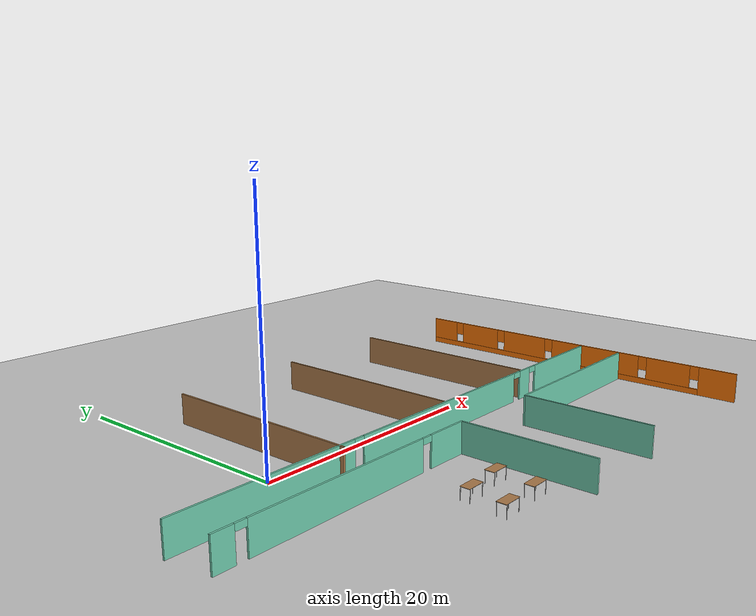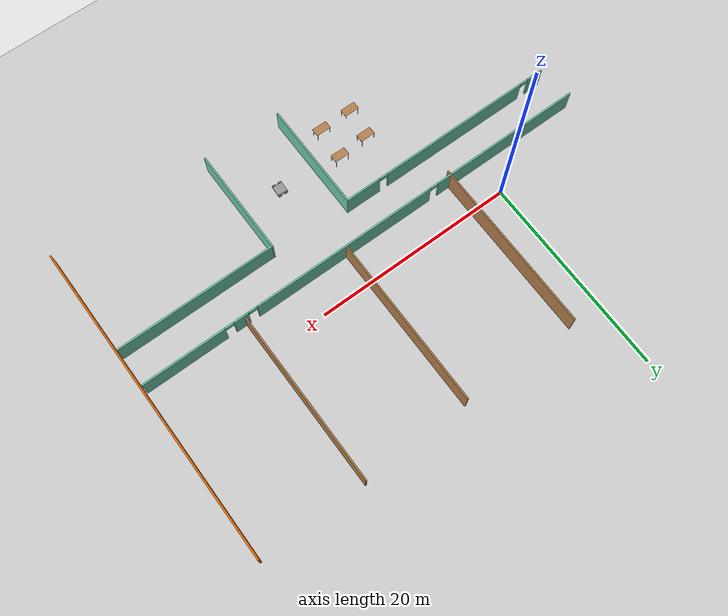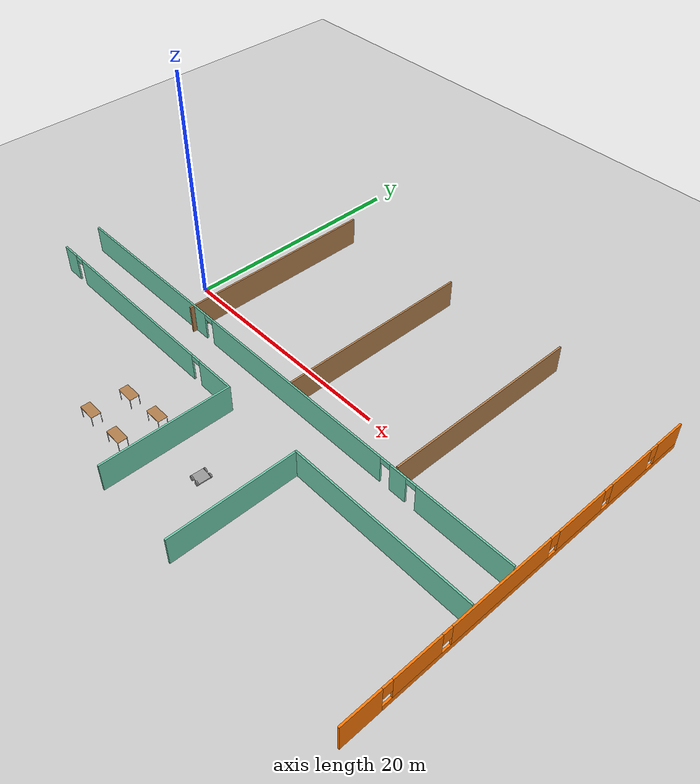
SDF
<sdf version="1.6">
 <world name="default">
  <model name="ground_plane">
   <static>1</static>
   <link name="link">
    <collision name="collision">
     <geometry><plane><normal>0 0 1</normal><size>100 100</size></plane></geometry>
     <surface>
      <contact><collide_bitmask>65535</collide_bitmask></contact>
      <friction><ode><mu>100</mu><mu2>50</mu2></ode></friction>
     </surface>
    </collision>
    <visual name="visual">
     <cast_shadows>0</cast_shadows>
     <geometry><plane><normal>0 0 1</normal><size>100 100</size></plane></geometry>
     <material>
      <script><uri>file://media/materials/scripts/gazebo.material</uri><name>Gazebo/Grey</name></script>
     </material>
    </visual>
   </link>
  </model>
  <model name="world">
   <pose>0.998 -1.93669 0 0 -0 0</pose>
   <link name="Wall_14">
    <pose>11.8284 -1.40779 0 0 -0 0</pose>
    <visual name="Wall_14_Visual_0">
     <pose>-15.6414 0 1.25 0 -0 0</pose>
     <geometry><box><size>15.4671 0.15 2.5</size></box></geometry>
     <material>
      <script><uri>file://media/materials/scripts/gazebo.material</uri><name>Gazebo/Grey</name></script>
      <ambient>0.435294 0.796078 0.67451 1</ambient>
     </material>
     <meta><layer>0</layer></meta>
    </visual>
    <collision name="Wall_14_Collision_0">
     <geometry><box><size>15.4671 0.15 2.5</size></box></geometry>
     <pose>-15.6414 0 1.25 0 -0 0</pose>
    </collision>
    <visual name="Wall_14_Visual_1">
     <pose>2.37266 0 1.25 0 -0 0</pose>
     <geometry><box><size>18.761 0.15 2.5</size></box></geometry>
     <material>
      <script><uri>file://media/materials/scripts/gazebo.material</uri><name>Gazebo/Grey</name></script>
      <ambient>0.435294 0.796078 0.67451 1</ambient>
     </material>
     <meta><layer>0</layer></meta>
    </visual>
    <collision name="Wall_14_Collision_1">
     <geometry><box><size>18.761 0.15 2.5</size></box></geometry>
     <pose>2.37266 0 1.25 0 -0 0</pose>
    </collision>
    <visual name="Wall_14_Visual_2">
     <pose>13.406 0 1.25 0 -0 0</pose>
     <geometry><box><size>1.50558 0.15 2.5</size></box></geometry>
     <material>
      <script><uri>file://media/materials/scripts/gazebo.material</uri><name>Gazebo/Grey</name></script>
      <ambient>0.435294 0.796078 0.67451 1</ambient>
     </material>
     <meta><layer>0</layer></meta>
    </visual>
    <collision name="Wall_14_Collision_2">
     <geometry><box><size>1.50558 0.15 2.5</size></box></geometry>
     <pose>13.406 0 1.25 0 -0 0</pose>
    </collision>
    <visual name="Wall_14_Visual_3">
     <pose>19.2169 0 1.25 0 -0 0</pose>
     <geometry><box><size>8.31625 0.15 2.5</size></box></geometry>
     <material>
      <script><uri>file://media/materials/scripts/gazebo.material</uri><name>Gazebo/Grey</name></script>
      <ambient>0.435294 0.796078 0.67451 1</ambient>
     </material>
     <meta><layer>0</layer></meta>
    </visual>
    <collision name="Wall_14_Collision_3">
     <geometry><box><size>8.31625 0.15 2.5</size></box></geometry>
     <pose>19.2169 0 1.25 0 -0 0</pose>
    </collision>
    <visual name="Wall_14_Visual_4">
     <pose>-7.45785 0 2.25 0 -0 0</pose>
     <geometry><box><size>0.9 0.15 0.5</size></box></geometry>
     <material>
      <script><uri>file://media/materials/scripts/gazebo.material</uri><name>Gazebo/Grey</name></script>
      <ambient>0.435294 0.796078 0.67451 1</ambient>
     </material>
     <meta><layer>0</layer></meta>
    </visual>
    <collision name="Wall_14_Collision_4">
     <geometry><box><size>0.9 0.15 0.5</size></box></geometry>
     <pose>-7.45785 0 2.25 0 -0 0</pose>
    </collision>
    <visual name="Wall_14_Visual_5">
     <pose>12.2032 0 2.25 0 -0 0</pose>
     <geometry><box><size>0.9 0.15 0.5</size></box></geometry>
     <material>
      <script><uri>file://media/materials/scripts/gazebo.material</uri><name>Gazebo/Grey</name></script>
      <ambient>0.435294 0.796078 0.67451 1</ambient>
     </material>
     <meta><layer>0</layer></meta>
    </visual>
    <collision name="Wall_14_Collision_5">
     <geometry><box><size>0.9 0.15 0.5</size></box></geometry>
     <pose>12.2032 0 2.25 0 -0 0</pose>
    </collision>
    <visual name="Wall_14_Visual_6">
     <pose>14.6087 0 2.25 0 -0 0</pose>
     <geometry><box><size>0.9 0.15 0.5</size></box></geometry>
     <material>
      <script><uri>file://media/materials/scripts/gazebo.material</uri><name>Gazebo/Grey</name></script>
      <ambient>0.435294 0.796078 0.67451 1</ambient>
     </material>
     <meta><layer>0</layer></meta>
    </visual>
    <collision name="Wall_14_Collision_6">
     <geometry><box><size>0.9 0.15 0.5</size></box></geometry>
     <pose>14.6087 0 2.25 0 -0 0</pose>
    </collision>
   </link>
   <link name="Wall_16">
    <collision name="Wall_16_Collision">
     <geometry><box><size>17.5 0.15 2.5</size></box></geometry>
     <pose>0 0 1.25 0 -0 0</pose>
    </collision>
    <visual name="Wall_16_Visual">
     <pose>0 0 1.25 0 -0 0</pose>
     <geometry><box><size>17.5 0.15 2.5</size></box></geometry>
     <material>
      <script><uri>file://media/materials/scripts/gazebo.material</uri><name>Gazebo/Wood</name></script>
      <ambient>1 1 1 1</ambient>
     </material>
     <meta><layer>0</layer></meta>
    </visual>
    <pose>2.48559 6.92417 0 0 0 -1.5708</pose>
   </link>
   <link name="Wall_18">
    <collision name="Wall_18_Collision">
     <geometry><box><size>17 0.15 2.5</size></box></geometry>
     <pose>0 0 1.25 0 -0 0</pose>
    </collision>
    <visual name="Wall_18_Visual">
     <pose>0 0 1.25 0 -0 0</pose>
     <geometry><box><size>17 0.15 2.5</size></box></geometry>
     <material>
      <script><uri>file://media/materials/scripts/gazebo.material</uri><name>Gazebo/Wood</name></script>
      <ambient>1 1 1 1</ambient>
     </material>
     <meta><layer>0</layer></meta>
    </visual>
    <pose>14.1166 7.17417 0 0 0 -1.5708</pose>
   </link>
   <link name="Wall_20">
    <collision name="Wall_20_Collision">
     <geometry><box><size>17.25 0.15 2.5</size></box></geometry>
     <pose>0 0 1.25 0 -0 0</pose>
    </collision>
    <visual name="Wall_20_Visual">
     <pose>0 0 1.25 0 -0 0</pose>
     <geometry><box><size>17.25 0.15 2.5</size></box></geometry>
     <material>
      <script><uri>file://media/materials/scripts/gazebo.material</uri><name>Gazebo/Wood</name></script>
      <ambient>1 1 1 1</ambient>
     </material>
     <meta><layer>0</layer></meta>
    </visual>
    <pose>24.9101 7.42136 0 0 0 -1.5708</pose>
   </link>
   <link name="Wall_26">
    <pose>0.261708 -4.87136 0 0 -0 0</pose>
    <visual name="Wall_26_Visual_0">
     <pose>-10.4274 0 1.25 0 -0 0</pose>
     <geometry><box><size>1.64525 0.15 2.5</size></box></geometry>
     <material>
      <script><uri>file://media/materials/scripts/gazebo.material</uri><name>Gazebo/Grey</name></script>
      <ambient>0.435294 0.796078 0.67451 1</ambient>
     </material>
     <meta><layer>0</layer></meta>
    </visual>
    <collision name="Wall_26_Collision_0">
     <geometry><box><size>1.64525 0.15 2.5</size></box></geometry>
     <pose>-10.4274 0 1.25 0 -0 0</pose>
    </collision>
    <visual name="Wall_26_Visual_1">
     <pose>-0.993281 0 1.25 0 -0 0</pose>
     <geometry><box><size>15.4229 0.15 2.5</size></box></geometry>
     <material>
      <script><uri>file://media/materials/scripts/gazebo.material</uri><name>Gazebo/Grey</name></script>
      <ambient>0.435294 0.796078 0.67451 1</ambient>
     </material>
     <meta><layer>0</layer></meta>
    </visual>
    <collision name="Wall_26_Collision_1">
     <geometry><box><size>15.4229 0.15 2.5</size></box></geometry>
     <pose>-0.993281 0 1.25 0 -0 0</pose>
    </collision>
    <visual name="Wall_26_Visual_2">
     <pose>9.4341 0 1.25 0 -0 0</pose>
     <geometry><box><size>3.63181 0.15 2.5</size></box></geometry>
     <material>
      <script><uri>file://media/materials/scripts/gazebo.material</uri><name>Gazebo/Grey</name></script>
      <ambient>0.435294 0.796078 0.67451 1</ambient>
     </material>
     <meta><layer>0</layer></meta>
    </visual>
    <collision name="Wall_26_Collision_2">
     <geometry><box><size>3.63181 0.15 2.5</size></box></geometry>
     <pose>9.4341 0 1.25 0 -0 0</pose>
    </collision>
    <visual name="Wall_26_Visual_3">
     <pose>-9.15475 0 2.25 0 -0 0</pose>
     <geometry><box><size>0.9 0.15 0.5</size></box></geometry>
     <material>
      <script><uri>file://media/materials/scripts/gazebo.material</uri><name>Gazebo/Grey</name></script>
      <ambient>0.435294 0.796078 0.67451 1</ambient>
     </material>
     <meta><layer>0</layer></meta>
    </visual>
    <collision name="Wall_26_Collision_3">
     <geometry><box><size>0.9 0.15 0.5</size></box></geometry>
     <pose>-9.15475 0 2.25 0 -0 0</pose>
    </collision>
    <visual name="Wall_26_Visual_4">
     <pose>7.16819 0 2.25 0 -0 0</pose>
     <geometry><box><size>0.9 0.15 0.5</size></box></geometry>
     <material>
      <script><uri>file://media/materials/scripts/gazebo.material</uri><name>Gazebo/Grey</name></script>
      <ambient>0.435294 0.796078 0.67451 1</ambient>
     </material>
     <meta><layer>0</layer></meta>
    </visual>
    <collision name="Wall_26_Collision_4">
     <geometry><box><size>0.9 0.15 0.5</size></box></geometry>
     <pose>7.16819 0 2.25 0 -0 0</pose>
    </collision>
   </link>
   <link name="Wall_27">
    <collision name="Wall_27_Collision">
     <geometry><box><size>11 0.15 2.5</size></box></geometry>
     <pose>0 0 1.25 0 -0 0</pose>
    </collision>
    <visual name="Wall_27_Visual">
     <pose>0 0 1.25 0 -0 0</pose>
     <geometry><box><size>11 0.15 2.5</size></box></geometry>
     <material>
      <script><uri>file://media/materials/scripts/gazebo.material</uri><name>Gazebo/Grey</name></script>
      <ambient>0.435294 0.796078 0.67451 1</ambient>
     </material>
     <meta><layer>0</layer></meta>
    </visual>
    <pose>11.4367 -10.2964 0 0 0 -1.5708</pose>
   </link>
   <link name="Wall_29">
    <collision name="Wall_29_Collision">
     <geometry><box><size>16 0.15 2.5</size></box></geometry>
     <pose>0 0 1.25 0 -0 0</pose>
    </collision>
    <visual name="Wall_29_Visual">
     <pose>0 0 1.25 0 -0 0</pose>
     <geometry><box><size>16 0.15 2.5</size></box></geometry>
     <material>
      <script><uri>file://media/materials/scripts/gazebo.material</uri><name>Gazebo/Grey</name></script>
      <ambient>0.435294 0.796078 0.67451 1</ambient>
     </material>
     <meta><layer>0</layer></meta>
    </visual>
    <pose>27.2523 -5.24355 0 0 -0 0</pose>
   </link>
   <link name="Wall_32">
    <collision name="Wall_32_Collision">
     <geometry><box><size>10.75 0.15 2.5</size></box></geometry>
     <pose>0 0 1.25 0 -0 0</pose>
    </collision>
    <visual name="Wall_32_Visual">
     <pose>0 0 1.25 0 -0 0</pose>
     <geometry><box><size>10.75 0.15 2.5</size></box></geometry>
     <material>
      <script><uri>file://media/materials/scripts/gazebo.material</uri><name>Gazebo/Grey</name></script>
      <ambient>0.435294 0.796078 0.67451 1</ambient>
     </material>
     <meta><layer>0</layer></meta>
    </visual>
    <pose>19.3273 -10.5435 0 0 0 -1.5708</pose>
   </link>
   <link name="Wall_7">
    <pose>35.4012 -0.01193 0 0 -0 1.5708</pose>
    <visual name="Wall_7_Visual_0">
     <pose>-14.3843 0 1.25 0 -0 0</pose>
     <geometry><box><size>3.23139 0.15 2.5</size></box></geometry>
     <material>
      <script><uri>file://media/materials/scripts/gazebo.material</uri><name>Gazebo/Grey</name></script>
      <ambient>0.996078 0.47451 0.0196078 1</ambient>
     </material>
     <meta><layer>0</layer></meta>
    </visual>
    <collision name="Wall_7_Collision_0">
     <geometry><box><size>3.23139 0.15 2.5</size></box></geometry>
     <pose>-14.3843 0 1.25 0 -0 0</pose>
    </collision>
    <visual name="Wall_7_Visual_1">
     <pose>1.6157 0 0.25 0 -0 0</pose>
     <geometry><box><size>28.7686 0.15 0.5</size></box></geometry>
     <material>
      <script><uri>file://media/materials/scripts/gazebo.material</uri><name>Gazebo/Grey</name></script>
      <ambient>0.996078 0.47451 0.0196078 1</ambient>
     </material>
     <meta><layer>0</layer></meta>
    </visual>
    <collision name="Wall_7_Collision_1">
     <geometry><box><size>28.7686 0.15 0.5</size></box></geometry>
     <pose>1.6157 0 0.25 0 -0 0</pose>
    </collision>
    <visual name="Wall_7_Visual_2">
     <pose>-9.958 0 1.5 0 -0 0</pose>
     <geometry><box><size>4.02121 0.15 2</size></box></geometry>
     <material>
      <script><uri>file://media/materials/scripts/gazebo.material</uri><name>Gazebo/Grey</name></script>
      <ambient>0.996078 0.47451 0.0196078 1</ambient>
     </material>
     <meta><layer>0</layer></meta>
    </visual>
    <collision name="Wall_7_Collision_2">
     <geometry><box><size>4.02121 0.15 2</size></box></geometry>
     <pose>-9.958 0 1.5 0 -0 0</pose>
    </collision>
    <visual name="Wall_7_Visual_3">
     <pose>-2.67355 0 1.5 0 -0 0</pose>
     <geometry><box><size>8.9477 0.15 2</size></box></geometry>
     <material>
      <script><uri>file://media/materials/scripts/gazebo.material</uri><name>Gazebo/Grey</name></script>
      <ambient>0.996078 0.47451 0.0196078 1</ambient>
     </material>
     <meta><layer>0</layer></meta>
    </visual>
    <collision name="Wall_7_Collision_3">
     <geometry><box><size>8.9477 0.15 2</size></box></geometry>
     <pose>-2.67355 0 1.5 0 -0 0</pose>
    </collision>
    <visual name="Wall_7_Visual_4">
     <pose>4.95128 0 1.5 0 -0 0</pose>
     <geometry><box><size>4.70196 0.15 2</size></box></geometry>
     <material>
      <script><uri>file://media/materials/scripts/gazebo.material</uri><name>Gazebo/Grey</name></script>
      <ambient>0.996078 0.47451 0.0196078 1</ambient>
     </material>
     <meta><layer>0</layer></meta>
    </visual>
    <collision name="Wall_7_Collision_4">
     <geometry><box><size>4.70196 0.15 2</size></box></geometry>
     <pose>4.95128 0 1.5 0 -0 0</pose>
    </collision>
    <visual name="Wall_7_Visual_5">
     <pose>10.251 0 1.5 0 -0 0</pose>
     <geometry><box><size>4.2974 0.15 2</size></box></geometry>
     <material>
      <script><uri>file://media/materials/scripts/gazebo.material</uri><name>Gazebo/Grey</name></script>
      <ambient>0.996078 0.47451 0.0196078 1</ambient>
     </material>
     <meta><layer>0</layer></meta>
    </visual>
    <collision name="Wall_7_Collision_5">
     <geometry><box><size>4.2974 0.15 2</size></box></geometry>
     <pose>10.251 0 1.5 0 -0 0</pose>
    </collision>
    <visual name="Wall_7_Visual_6">
     <pose>14.5998 0 1.5 0 -0 0</pose>
     <geometry><box><size>2.80034 0.15 2</size></box></geometry>
     <material>
      <script><uri>file://media/materials/scripts/gazebo.material</uri><name>Gazebo/Grey</name></script>
      <ambient>0.996078 0.47451 0.0196078 1</ambient>
     </material>
     <meta><layer>0</layer></meta>
    </visual>
    <collision name="Wall_7_Collision_6">
     <geometry><box><size>2.80034 0.15 2</size></box></geometry>
     <pose>14.5998 0 1.5 0 -0 0</pose>
    </collision>
    <visual name="Wall_7_Visual_7">
     <pose>-12.3686 0 1.9 0 -0 0</pose>
     <geometry><box><size>0.8 0.15 1.2</size></box></geometry>
     <material>
      <script><uri>file://media/materials/scripts/gazebo.material</uri><name>Gazebo/Grey</name></script>
      <ambient>0.996078 0.47451 0.0196078 1</ambient>
     </material>
     <meta><layer>0</layer></meta>
    </visual>
    <collision name="Wall_7_Collision_7">
     <geometry><box><size>0.8 0.15 1.2</size></box></geometry>
     <pose>-12.3686 0 1.9 0 -0 0</pose>
    </collision>
    <visual name="Wall_7_Visual_8">
     <pose>-7.5474 0 1.9 0 -0 0</pose>
     <geometry><box><size>0.8 0.15 1.2</size></box></geometry>
     <material>
      <script><uri>file://media/materials/scripts/gazebo.material</uri><name>Gazebo/Grey</name></script>
      <ambient>0.996078 0.47451 0.0196078 1</ambient>
     </material>
     <meta><layer>0</layer></meta>
    </visual>
    <collision name="Wall_7_Collision_8">
     <geometry><box><size>0.8 0.15 1.2</size></box></geometry>
     <pose>-7.5474 0 1.9 0 -0 0</pose>
    </collision>
    <visual name="Wall_7_Visual_9">
     <pose>2.2003 0 1.9 0 -0 0</pose>
     <geometry><box><size>0.8 0.15 1.2</size></box></geometry>
     <material>
      <script><uri>file://media/materials/scripts/gazebo.material</uri><name>Gazebo/Grey</name></script>
      <ambient>0.996078 0.47451 0.0196078 1</ambient>
     </material>
     <meta><layer>0</layer></meta>
    </visual>
    <collision name="Wall_7_Collision_9">
     <geometry><box><size>0.8 0.15 1.2</size></box></geometry>
     <pose>2.2003 0 1.9 0 -0 0</pose>
    </collision>
    <visual name="Wall_7_Visual_10">
     <pose>7.70226 0 1.9 0 -0 0</pose>
     <geometry><box><size>0.8 0.15 1.2</size></box></geometry>
     <material>
      <script><uri>file://media/materials/scripts/gazebo.material</uri><name>Gazebo/Grey</name></script>
      <ambient>0.996078 0.47451 0.0196078 1</ambient>
     </material>
     <meta><layer>0</layer></meta>
    </visual>
    <collision name="Wall_7_Collision_10">
     <geometry><box><size>0.8 0.15 1.2</size></box></geometry>
     <pose>7.70226 0 1.9 0 -0 0</pose>
    </collision>
    <visual name="Wall_7_Visual_11">
     <pose>12.7997 0 1.9 0 -0 0</pose>
     <geometry><box><size>0.8 0.15 1.2</size></box></geometry>
     <material>
      <script><uri>file://media/materials/scripts/gazebo.material</uri><name>Gazebo/Grey</name></script>
      <ambient>0.996078 0.47451 0.0196078 1</ambient>
     </material>
     <meta><layer>0</layer></meta>
    </visual>
    <collision name="Wall_7_Collision_11">
     <geometry><box><size>0.8 0.15 1.2</size></box></geometry>
     <pose>12.7997 0 1.9 0 -0 0</pose>
    </collision>
   </link>
   <static>1</static>
  </model>
  <model name="table">
   <static>1</static>
   <link name="link">
    <collision name="surface">
     <pose>0 0 1 0 -0 0</pose>
     <geometry><box><size>1.5 0.8 0.03</size></box></geometry>
     <surface><friction><ode><mu>0.6</mu><mu2>0.6</mu2></ode></friction></surface>
    </collision>
    <visual name="visual1">
     <pose>0 0 1 0 -0 0</pose>
     <geometry><box><size>1.5 0.8 0.03</size></box></geometry>
     <material>
      <script><uri>file://media/materials/scripts/gazebo.material</uri><name>Gazebo/Wood</name></script>
     </material>
    </visual>
    <collision name="front_left_leg">
     <pose>0.68 0.38 0.5 0 -0 0</pose>
     <geometry><cylinder><radius>0.02</radius><length>1</length></cylinder></geometry>
    </collision>
    <visual name="front_left_leg">
     <pose>0.68 0.38 0.5 0 -0 0</pose>
     <geometry><cylinder><radius>0.02</radius><length>1</length></cylinder></geometry>
     <material>
      <script><uri>file://media/materials/scripts/gazebo.material</uri><name>Gazebo/Grey</name></script>
     </material>
    </visual>
    <collision name="front_right_leg">
     <pose>0.68 -0.38 0.5 0 -0 0</pose>
     <geometry><cylinder><radius>0.02</radius><length>1</length></cylinder></geometry>
    </collision>
    <visual name="front_right_leg">
     <pose>0.68 -0.38 0.5 0 -0 0</pose>
     <geometry><cylinder><radius>0.02</radius><length>1</length></cylinder></geometry>
     <material>
      <script><uri>file://media/materials/scripts/gazebo.material</uri><name>Gazebo/Grey</name></script>
     </material>
    </visual>
    <collision name="back_right_leg">
     <pose>-0.68 -0.38 0.5 0 -0 0</pose>
     <geometry><cylinder><radius>0.02</radius><length>1</length></cylinder></geometry>
    </collision>
    <visual name="back_right_leg">
     <pose>-0.68 -0.38 0.5 0 -0 0</pose>
     <geometry><cylinder><radius>0.02</radius><length>1</length></cylinder></geometry>
     <material>
      <script><uri>file://media/materials/scripts/gazebo.material</uri><name>Gazebo/Grey</name></script>
     </material>
    </visual>
    <collision name="back_left_leg">
     <pose>-0.68 0.38 0.5 0 -0 0</pose>
     <geometry><cylinder><radius>0.02</radius><length>1</length></cylinder></geometry>
    </collision>
    <visual name="back_left_leg">
     <pose>-0.68 0.38 0.5 0 -0 0</pose>
     <geometry><cylinder><radius>0.02</radius><length>1</length></cylinder></geometry>
     <material>
      <script><uri>file://media/materials/scripts/gazebo.material</uri><name>Gazebo/Grey</name></script>
     </material>
    </visual>
   </link>
   <pose>6.72518 -11.8017 0 0 -0 0</pose>
  </model>
  <model name="table_clone">
   <static>1</static>
   <link name="link">
    <collision name="surface">
     <pose>0 0 1 0 -0 0</pose>
     <geometry><box><size>1.5 0.8 0.03</size></box></geometry>
     <surface><friction><ode><mu>0.6</mu><mu2>0.6</mu2></ode></friction></surface>
    </collision>
    <visual name="visual1">
     <pose>0 0 1 0 -0 0</pose>
     <geometry><box><size>1.5 0.8 0.03</size></box></geometry>
     <material>
      <script><uri>file://media/materials/scripts/gazebo.material</uri><name>Gazebo/Wood</name></script>
     </material>
    </visual>
    <collision name="front_left_leg">
     <pose>0.68 0.38 0.5 0 -0 0</pose>
     <geometry><cylinder><radius>0.02</radius><length>1</length></cylinder></geometry>
    </collision>
    <visual name="front_left_leg">
     <pose>0.68 0.38 0.5 0 -0 0</pose>
     <geometry><cylinder><radius>0.02</radius><length>1</length></cylinder></geometry>
     <material>
      <script><uri>file://media/materials/scripts/gazebo.material</uri><name>Gazebo/Grey</name></script>
     </material>
    </visual>
    <collision name="front_right_leg">
     <pose>0.68 -0.38 0.5 0 -0 0</pose>
     <geometry><cylinder><radius>0.02</radius><length>1</length></cylinder></geometry>
    </collision>
    <visual name="front_right_leg">
     <pose>0.68 -0.38 0.5 0 -0 0</pose>
     <geometry><cylinder><radius>0.02</radius><length>1</length></cylinder></geometry>
     <material>
      <script><uri>file://media/materials/scripts/gazebo.material</uri><name>Gazebo/Grey</name></script>
     </material>
    </visual>
    <collision name="back_right_leg">
     <pose>-0.68 -0.38 0.5 0 -0 0</pose>
     <geometry><cylinder><radius>0.02</radius><length>1</length></cylinder></geometry>
    </collision>
    <visual name="back_right_leg">
     <pose>-0.68 -0.38 0.5 0 -0 0</pose>
     <geometry><cylinder><radius>0.02</radius><length>1</length></cylinder></geometry>
     <material>
      <script><uri>file://media/materials/scripts/gazebo.material</uri><name>Gazebo/Grey</name></script>
     </material>
    </visual>
    <collision name="back_left_leg">
     <pose>-0.68 0.38 0.5 0 -0 0</pose>
     <geometry><cylinder><radius>0.02</radius><length>1</length></cylinder></geometry>
    </collision>
    <visual name="back_left_leg">
     <pose>-0.68 0.38 0.5 0 -0 0</pose>
     <geometry><cylinder><radius>0.02</radius><length>1</length></cylinder></geometry>
     <material>
      <script><uri>file://media/materials/scripts/gazebo.material</uri><name>Gazebo/Grey</name></script>
     </material>
    </visual>
   </link>
   <pose>9.89112 -11.507 0 0 -0 0</pose>
  </model>
  <model name="table_clone_0">
   <static>1</static>
   <link name="link">
    <collision name="surface">
     <pose>0 0 1 0 -0 0</pose>
     <geometry><box><size>1.5 0.8 0.03</size></box></geometry>
     <surface><friction><ode><mu>0.6</mu><mu2>0.6</mu2></ode></friction></surface>
    </collision>
    <visual name="visual1">
     <pose>0 0 1 0 -0 0</pose>
     <geometry><box><size>1.5 0.8 0.03</size></box></geometry>
     <material>
      <script><uri>file://media/materials/scripts/gazebo.material</uri><name>Gazebo/Wood</name></script>
     </material>
    </visual>
    <collision name="front_left_leg">
     <pose>0.68 0.38 0.5 0 -0 0</pose>
     <geometry><cylinder><radius>0.02</radius><length>1</length></cylinder></geometry>
    </collision>
    <visual name="front_left_leg">
     <pose>0.68 0.38 0.5 0 -0 0</pose>
     <geometry><cylinder><radius>0.02</radius><length>1</length></cylinder></geometry>
     <material>
      <script><uri>file://media/materials/scripts/gazebo.material</uri><name>Gazebo/Grey</name></script>
     </material>
    </visual>
    <collision name="front_right_leg">
     <pose>0.68 -0.38 0.5 0 -0 0</pose>
     <geometry><cylinder><radius>0.02</radius><length>1</length></cylinder></geometry>
    </collision>
    <visual name="front_right_leg">
     <pose>0.68 -0.38 0.5 0 -0 0</pose>
     <geometry><cylinder><radius>0.02</radius><length>1</length></cylinder></geometry>
     <material>
      <script><uri>file://media/materials/scripts/gazebo.material</uri><name>Gazebo/Grey</name></script>
     </material>
    </visual>
    <collision name="back_right_leg">
     <pose>-0.68 -0.38 0.5 0 -0 0</pose>
     <geometry><cylinder><radius>0.02</radius><length>1</length></cylinder></geometry>
    </collision>
    <visual name="back_right_leg">
     <pose>-0.68 -0.38 0.5 0 -0 0</pose>
     <geometry><cylinder><radius>0.02</radius><length>1</length></cylinder></geometry>
     <material>
      <script><uri>file://media/materials/scripts/gazebo.material</uri><name>Gazebo/Grey</name></script>
     </material>
    </visual>
    <collision name="back_left_leg">
     <pose>-0.68 0.38 0.5 0 -0 0</pose>
     <geometry><cylinder><radius>0.02</radius><length>1</length></cylinder></geometry>
    </collision>
    <visual name="back_left_leg">
     <pose>-0.68 0.38 0.5 0 -0 0</pose>
     <geometry><cylinder><radius>0.02</radius><length>1</length></cylinder></geometry>
     <material>
      <script><uri>file://media/materials/scripts/gazebo.material</uri><name>Gazebo/Grey</name></script>
     </material>
    </visual>
   </link>
   <pose>9.65125 -14.7254 0 0 -0 0</pose>
  </model>
  <model name="table_clone_0_clone">
   <static>1</static>
   <link name="link">
    <collision name="surface">
     <pose>0 0 1 0 -0 0</pose>
     <geometry><box><size>1.5 0.8 0.03</size></box></geometry>
     <surface><friction><ode><mu>0.6</mu><mu2>0.6</mu2></ode></friction></surface>
    </collision>
    <visual name="visual1">
     <pose>0 0 1 0 -0 0</pose>
     <geometry><box><size>1.5 0.8 0.03</size></box></geometry>
     <material>
      <script><uri>file://media/materials/scripts/gazebo.material</uri><name>Gazebo/Wood</name></script>
     </material>
    </visual>
    <collision name="front_left_leg">
     <pose>0.68 0.38 0.5 0 -0 0</pose>
     <geometry><cylinder><radius>0.02</radius><length>1</length></cylinder></geometry>
    </collision>
    <visual name="front_left_leg">
     <pose>0.68 0.38 0.5 0 -0 0</pose>
     <geometry><cylinder><radius>0.02</radius><length>1</length></cylinder></geometry>
     <material>
      <script><uri>file://media/materials/scripts/gazebo.material</uri><name>Gazebo/Grey</name></script>
     </material>
    </visual>
    <collision name="front_right_leg">
     <pose>0.68 -0.38 0.5 0 -0 0</pose>
     <geometry><cylinder><radius>0.02</radius><length>1</length></cylinder></geometry>
    </collision>
    <visual name="front_right_leg">
     <pose>0.68 -0.38 0.5 0 -0 0</pose>
     <geometry><cylinder><radius>0.02</radius><length>1</length></cylinder></geometry>
     <material>
      <script><uri>file://media/materials/scripts/gazebo.material</uri><name>Gazebo/Grey</name></script>
     </material>
    </visual>
    <collision name="back_right_leg">
     <pose>-0.68 -0.38 0.5 0 -0 0</pose>
     <geometry><cylinder><radius>0.02</radius><length>1</length></cylinder></geometry>
    </collision>
    <visual name="back_right_leg">
     <pose>-0.68 -0.38 0.5 0 -0 0</pose>
     <geometry><cylinder><radius>0.02</radius><length>1</length></cylinder></geometry>
     <material>
      <script><uri>file://media/materials/scripts/gazebo.material</uri><name>Gazebo/Grey</name></script>
     </material>
    </visual>
    <collision name="back_left_leg">
     <pose>-0.68 0.38 0.5 0 -0 0</pose>
     <geometry><cylinder><radius>0.02</radius><length>1</length></cylinder></geometry>
    </collision>
    <visual name="back_left_leg">
     <pose>-0.68 0.38 0.5 0 -0 0</pose>
     <geometry><cylinder><radius>0.02</radius><length>1</length></cylinder></geometry>
     <material>
      <script><uri>file://media/materials/scripts/gazebo.material</uri><name>Gazebo/Grey</name></script>
     </material>
    </visual>
   </link>
   <pose>6.33848 -14.8151 0 0 -0 0</pose>
  </model>
  <model name="bot1">
   <link name="link_0">
    <inertial>
     <mass>1</mass>
     <inertia>
      <ixx>0.166667</ixx>
      <ixy>0</ixy>
      <ixz>0</ixz>
      <iyy>0.166667</iyy>
      <iyz>0</iyz>
      <izz>0.166667</izz>
     </inertia>
    </inertial>
    <visual name="visual">
     <geometry><box><size>1 1 0.1</size></box></geometry>
     <material>
      <lighting>1</lighting>
      <script><uri>file://media/materials/scripts/gazebo.material</uri><name>Gazebo/Grey</name></script>
      <shader type="pixel"><normal_map>__default__</normal_map></shader>
      <ambient>0.3 0.3 0.3 1</ambient>
      <diffuse>0.7 0.7 0.7 1</diffuse>
      <specular>0.01 0.01 0.01 1</specular>
      <emissive>0 0 0 1</emissive>
     </material>
    </visual>
    <collision name="collision">
     <geometry><box><size>1 1 0.1</size></box></geometry>
     <surface>
      <friction>
       <ode><mu>1</mu><mu2>1</mu2><fdir1>0 0 0</fdir1><slip1>0</slip1><slip2>0</slip2></ode>
       <torsional>
        <coefficient>1</coefficient>
        <patch_radius>0</patch_radius>
        <surface_radius>0</surface_radius>
        <use_patch_radius>1</use_patch_radius>
        <ode><slip>0</slip></ode>
       </torsional>
      </friction>
      <bounce><restitution_coefficient>0</restitution_coefficient><threshold>1e+06</threshold></bounce>
      <contact>
       <collide_without_contact>0</collide_without_contact>
       <collide_without_contact_bitmask>1</collide_without_contact_bitmask>
       <collide_bitmask>1</collide_bitmask>
       <ode>
        <soft_cfm>0</soft_cfm>
        <soft_erp>0.2</soft_erp>
        <kp>1e+13</kp>
        <kd>1</kd>
        <max_vel>0.01</max_vel>
        <min_depth>0</min_depth>
       </ode>
       <bullet>
        <split_impulse>1</split_impulse>
        <split_impulse_penetration_threshold>-0.01</split_impulse_penetration_threshold>
        <soft_cfm>0</soft_cfm>
        <soft_erp>0.2</soft_erp>
        <kp>1e+13</kp>
        <kd>1</kd>
       </bullet>
      </contact>
     </surface>
    </collision>
   </link>
   <link name="link_1">
    <pose>-0.3 -0.550019 0 1.5707 -0 0</pose>
    <inertial>
     <mass>1</mass>
     <inertia><ixx>0.145833</ixx><ixy>0</ixy><ixz>0</ixz><iyy>0.145833</iyy><iyz>0</iyz><izz>0.125</izz></inertia>
    </inertial>
    <visual name="visual">
     <geometry><cylinder><radius>0.2</radius><length>0.1</length></cylinder></geometry>
     <material>
      <lighting>1</lighting>
      <script><uri>file://media/materials/scripts/gazebo.material</uri><name>Gazebo/Grey</name></script>
      <shader type="pixel"><normal_map>__default__</normal_map></shader>
      <ambient>0.3 0.3 0.3 1</ambient>
      <diffuse>0.7 0.7 0.7 1</diffuse>
      <specular>0.01 0.01 0.01 1</specular>
      <emissive>0 0 0 1</emissive>
     </material>
    </visual>
    <collision name="collision">
     <geometry><cylinder><radius>0.2</radius><length>0.1</length></cylinder></geometry>
     <surface>
      <friction>
       <ode><mu>1</mu><mu2>1</mu2><fdir1>0 0 0</fdir1><slip1>0</slip1><slip2>0</slip2></ode>
       <torsional>
        <coefficient>1</coefficient>
        <patch_radius>0</patch_radius>
        <surface_radius>0</surface_radius>
        <use_patch_radius>1</use_patch_radius>
        <ode><slip>0</slip></ode>
       </torsional>
      </friction>
      <bounce><restitution_coefficient>0</restitution_coefficient><threshold>1e+06</threshold></bounce>
      <contact>
       <collide_without_contact>0</collide_without_contact>
       <collide_without_contact_bitmask>1</collide_without_contact_bitmask>
       <collide_bitmask>1</collide_bitmask>
       <ode>
        <soft_cfm>0</soft_cfm>
        <soft_erp>0.2</soft_erp>
        <kp>1e+13</kp>
        <kd>1</kd>
        <max_vel>0.01</max_vel>
        <min_depth>0</min_depth>
       </ode>
       <bullet>
        <split_impulse>1</split_impulse>
        <split_impulse_penetration_threshold>-0.01</split_impulse_penetration_threshold>
        <soft_cfm>0</soft_cfm>
        <soft_erp>0.2</soft_erp>
        <kp>1e+13</kp>
        <kd>1</kd>
       </bullet>
      </contact>
     </surface>
    </collision>
   </link>
   <link name="link_1_clone">
    <pose>-0.3 0.550019 0 1.5707 -0 0</pose>
    <inertial>
     <mass>1</mass>
     <inertia><ixx>0.145833</ixx><ixy>0</ixy><ixz>0</ixz><iyy>0.145833</iyy><iyz>0</iyz><izz>0.125</izz></inertia>
    </inertial>
    <visual name="visual">
     <geometry><cylinder><radius>0.2</radius><length>0.1</length></cylinder></geometry>
     <material>
      <lighting>1</lighting>
      <script><uri>file://media/materials/scripts/gazebo.material</uri><name>Gazebo/Grey</name></script>
      <shader type="pixel"><normal_map>__default__</normal_map></shader>
      <ambient>0.3 0.3 0.3 1</ambient>
      <diffuse>0.7 0.7 0.7 1</diffuse>
      <specular>0.01 0.01 0.01 1</specular>
      <emissive>0 0 0 1</emissive>
     </material>
    </visual>
    <collision name="collision">
     <geometry><cylinder><radius>0.2</radius><length>0.1</length></cylinder></geometry>
     <surface>
      <friction>
       <ode><mu>1</mu><mu2>1</mu2><fdir1>0 0 0</fdir1><slip1>0</slip1><slip2>0</slip2></ode>
       <torsional>
        <coefficient>1</coefficient>
        <patch_radius>0</patch_radius>
        <surface_radius>0</surface_radius>
        <use_patch_radius>1</use_patch_radius>
        <ode><slip>0</slip></ode>
       </torsional>
      </friction>
      <bounce><restitution_coefficient>0</restitution_coefficient><threshold>1e+06</threshold></bounce>
      <contact>
       <collide_without_contact>0</collide_without_contact>
       <collide_without_contact_bitmask>1</collide_without_contact_bitmask>
       <collide_bitmask>1</collide_bitmask>
       <ode>
        <soft_cfm>0</soft_cfm>
        <soft_erp>0.2</soft_erp>
        <kp>1e+13</kp>
        <kd>1</kd>
        <max_vel>0.01</max_vel>
        <min_depth>0</min_depth>
       </ode>
       <bullet>
        <split_impulse>1</split_impulse>
        <split_impulse_penetration_threshold>-0.01</split_impulse_penetration_threshold>
        <soft_cfm>0</soft_cfm>
        <soft_erp>0.2</soft_erp>
        <kp>1e+13</kp>
        <kd>1</kd>
       </bullet>
      </contact>
     </surface>
    </collision>
   </link>
   <link name="link_1_clone_0">
    <pose>0.3 0.550019 0 1.5707 -0 0</pose>
    <inertial>
     <mass>1</mass>
     <inertia><ixx>0.145833</ixx><ixy>0</ixy><ixz>0</ixz><iyy>0.145833</iyy><iyz>0</iyz><izz>0.125</izz></inertia>
    </inertial>
    <visual name="visual">
     <geometry><cylinder><radius>0.2</radius><length>0.1</length></cylinder></geometry>
     <material>
      <lighting>1</lighting>
      <script><uri>file://media/materials/scripts/gazebo.material</uri><name>Gazebo/Grey</name></script>
      <shader type="pixel"><normal_map>__default__</normal_map></shader>
      <ambient>0.3 0.3 0.3 1</ambient>
      <diffuse>0.7 0.7 0.7 1</diffuse>
      <specular>0.01 0.01 0.01 1</specular>
      <emissive>0 0 0 1</emissive>
     </material>
    </visual>
    <collision name="collision">
     <geometry><cylinder><radius>0.2</radius><length>0.1</length></cylinder></geometry>
     <surface>
      <friction>
       <ode><mu>1</mu><mu2>1</mu2><fdir1>0 0 0</fdir1><slip1>0</slip1><slip2>0</slip2></ode>
       <torsional>
        <coefficient>1</coefficient>
        <patch_radius>0</patch_radius>
        <surface_radius>0</surface_radius>
        <use_patch_radius>1</use_patch_radius>
        <ode><slip>0</slip></ode>
       </torsional>
      </friction>
      <bounce><restitution_coefficient>0</restitution_coefficient><threshold>1e+06</threshold></bounce>
      <contact>
       <collide_without_contact>0</collide_without_contact>
       <collide_without_contact_bitmask>1</collide_without_contact_bitmask>
       <collide_bitmask>1</collide_bitmask>
       <ode>
        <soft_cfm>0</soft_cfm>
        <soft_erp>0.2</soft_erp>
        <kp>1e+13</kp>
        <kd>1</kd>
        <max_vel>0.01</max_vel>
        <min_depth>0</min_depth>
       </ode>
       <bullet>
        <split_impulse>1</split_impulse>
        <split_impulse_penetration_threshold>-0.01</split_impulse_penetration_threshold>
        <soft_cfm>0</soft_cfm>
        <soft_erp>0.2</soft_erp>
        <kp>1e+13</kp>
        <kd>1</kd>
       </bullet>
      </contact>
     </surface>
    </collision>
   </link>
   <link name="link_1_clone_1">
    <pose>0.3 -0.550019 0 1.5707 -0 0</pose>
    <inertial>
     <mass>1</mass>
     <inertia><ixx>0.145833</ixx><ixy>0</ixy><ixz>0</ixz><iyy>0.145833</iyy><iyz>0</iyz><izz>0.125</izz></inertia>
    </inertial>
    <visual name="visual">
     <geometry><cylinder><radius>0.2</radius><length>0.1</length></cylinder></geometry>
     <material>
      <lighting>1</lighting>
      <script><uri>file://media/materials/scripts/gazebo.material</uri><name>Gazebo/Grey</name></script>
      <shader type="pixel"><normal_map>__default__</normal_map></shader>
      <ambient>0.3 0.3 0.3 1</ambient>
      <diffuse>0.7 0.7 0.7 1</diffuse>
      <specular>0.01 0.01 0.01 1</specular>
      <emissive>0 0 0 1</emissive>
     </material>
    </visual>
    <collision name="collision">
     <geometry><cylinder><radius>0.2</radius><length>0.1</length></cylinder></geometry>
     <surface>
      <friction>
       <ode><mu>1</mu><mu2>1</mu2><fdir1>0 0 0</fdir1><slip1>0</slip1><slip2>0</slip2></ode>
       <torsional>
        <coefficient>1</coefficient>
        <patch_radius>0</patch_radius>
        <surface_radius>0</surface_radius>
        <use_patch_radius>1</use_patch_radius>
        <ode><slip>0</slip></ode>
       </torsional>
      </friction>
      <bounce><restitution_coefficient>0</restitution_coefficient><threshold>1e+06</threshold></bounce>
      <contact>
       <collide_without_contact>0</collide_without_contact>
       <collide_without_contact_bitmask>1</collide_without_contact_bitmask>
       <collide_bitmask>1</collide_bitmask>
       <ode>
        <soft_cfm>0</soft_cfm>
        <soft_erp>0.2</soft_erp>
        <kp>1e+13</kp>
        <kd>1</kd>
        <max_vel>0.01</max_vel>
        <min_depth>0</min_depth>
       </ode>
       <bullet>
        <split_impulse>1</split_impulse>
        <split_impulse_penetration_threshold>-0.01</split_impulse_penetration_threshold>
        <soft_cfm>0</soft_cfm>
        <soft_erp>0.2</soft_erp>
        <kp>1e+13</kp>
        <kd>1</kd>
       </bullet>
      </contact>
     </surface>
    </collision>
   </link>
   <joint name="link_0_JOINT_0" type="revolute">
    <parent>link_0</parent>
    <child>link_1</child>
    <axis>
     <xyz>0 0 1</xyz>
     <use_parent_model_frame>0</use_parent_model_frame>
     <limit>
      <lower>-1.79769e+308</lower>
      <upper>1.79769e+308</upper>
      <effort>-1</effort>
      <velocity>-1</velocity>
     </limit>
     <dynamics>
      <spring_reference>0</spring_reference>
      <spring_stiffness>0</spring_stiffness>
      <damping>0</damping>
     </dynamics>
    </axis>
    <physics>
     <ode><limit><cfm>0</cfm><erp>0.2</erp></limit><suspension><cfm>0</cfm><erp>0.2</erp></suspension></ode>
    </physics>
   </joint>
   <joint name="link_0_JOINT_1" type="revolute">
    <parent>link_0</parent>
    <child>link_1_clone</child>
    <axis>
     <xyz>0 0 1</xyz>
     <use_parent_model_frame>0</use_parent_model_frame>
     <limit>
      <lower>-1.79769e+308</lower>
      <upper>1.79769e+308</upper>
      <effort>-1</effort>
      <velocity>-1</velocity>
     </limit>
     <dynamics>
      <spring_reference>0</spring_reference>
      <spring_stiffness>0</spring_stiffness>
      <damping>0</damping>
     </dynamics>
    </axis>
    <physics>
     <ode><limit><cfm>0</cfm><erp>0.2</erp></limit><suspension><cfm>0</cfm><erp>0.2</erp></suspension></ode>
    </physics>
   </joint>
   <joint name="link_0_JOINT_2" type="revolute">
    <parent>link_0</parent>
    <child>link_1_clone_1</child>
    <axis>
     <xyz>0 0 1</xyz>
     <use_parent_model_frame>0</use_parent_model_frame>
     <limit>
      <lower>-1.79769e+308</lower>
      <upper>1.79769e+308</upper>
      <effort>-1</effort>
      <velocity>-1</velocity>
     </limit>
     <dynamics>
      <spring_reference>0</spring_reference>
      <spring_stiffness>0</spring_stiffness>
      <damping>0</damping>
     </dynamics>
    </axis>
    <physics>
     <ode><limit><cfm>0</cfm><erp>0.2</erp></limit><suspension><cfm>0</cfm><erp>0.2</erp></suspension></ode>
    </physics>
   </joint>
   <joint name="link_0_JOINT_3" type="revolute">
    <parent>link_0</parent>
    <child>link_1_clone_0</child>
    <axis>
     <xyz>0 0 1</xyz>
     <use_parent_model_frame>0</use_parent_model_frame>
     <limit>
      <lower>-1.79769e+308</lower>
      <upper>1.79769e+308</upper>
      <effort>-1</effort>
      <velocity>-1</velocity>
     </limit>
     <dynamics>
      <spring_reference>0</spring_reference>
      <spring_stiffness>0</spring_stiffness>
      <damping>0</damping>
     </dynamics>
    </axis>
    <physics>
     <ode><limit><cfm>0</cfm><erp>0.2</erp></limit><suspension><cfm>0</cfm><erp>0.2</erp></suspension></ode>
    </physics>
   </joint>
   <static>0</static>
   <pose>16.142 -12.2738 0.210005 0 0 -0.050855</pose>
  </model>
 </world>
</sdf>
